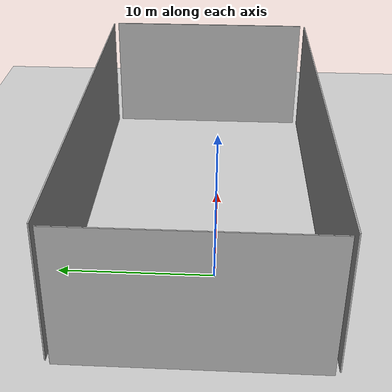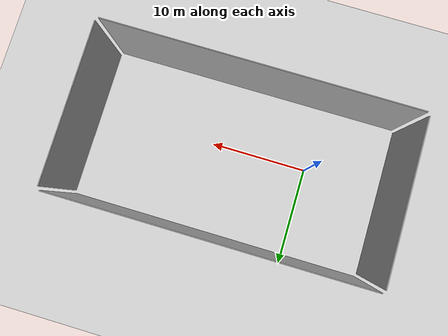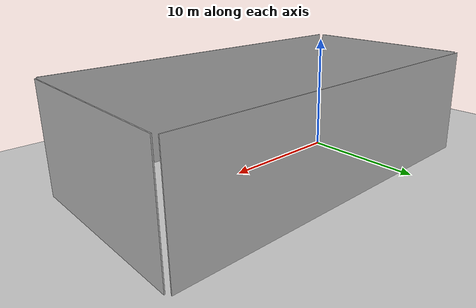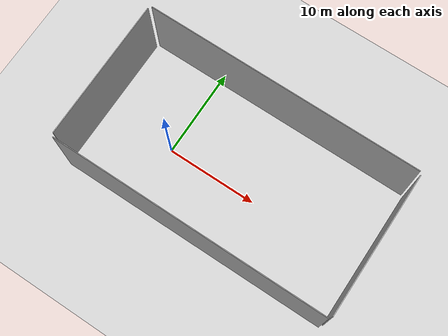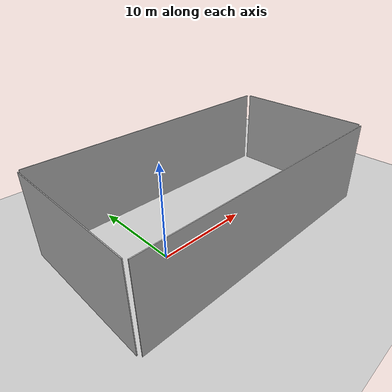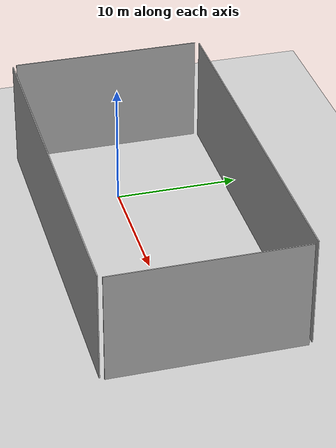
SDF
<sdf version="1.6">
 <world name="depot">
  <physics type="ode">
   <max_step_size>0.01</max_step_size>
   <real_time_factor>1.0</real_time_factor>
   <ode>
    <solver><type>quick</type><iters>2</iters><sor>1.4</sor></solver>
    <constraints>
     <cfm>0</cfm>
     <erp>1</erp>
     <contact_max_correcting_vel>0</contact_max_correcting_vel>
     <contact_surface_layer>0</contact_surface_layer>
    </constraints>
   </ode>
  </physics>
  <plugin filename="gz-sim-physics-system" name="ignition::gazebo::systems::Physics"/>
  <plugin filename="gz-sim-scene-broadcaster-system" name="ignition::gazebo::systems::SceneBroadcaster"/>
  <plugin filename="gz-sim-user-commands-system" name="ignition::gazebo::systems::UserCommands"/>
  <plugin filename="gz-sim-sensors-system" name="ignition::gazebo::systems::Sensors">
   <render_engine>ogre2</render_engine>
  </plugin>
  <plugin filename="gz-sim-air-pressure-system" name="gz::sim::systems::AirPressure"/>
  <plugin filename="gz-sim-imu-system" name="gz::sim::systems::Imu"/>
  <plugin filename="gz-sim-magnetometer-system" name="gz::sim::systems::Magnetometer"/>
  <plugin filename="gz-sim-navsat-system" name="gz::sim::systems::NavSat"/>
  <spherical_coordinates>
   <surface_model>EARTH_WGS84</surface_model>
   <world_frame_orientation>ENU</world_frame_orientation>
   <latitude_deg>-22.986687</latitude_deg>
   <longitude_deg>-43.202501</longitude_deg>
   <elevation>0</elevation>
   <heading_deg>0</heading_deg>
  </spherical_coordinates>
  <model name="ground_plane">
   <static>true</static>
   <link name="link">
    <collision name="ground_collision"><geometry><plane><normal>0 0 1</normal></plane></geometry></collision>
    <visual name="ground_visual">
     <geometry><plane><normal>0 0 1</normal><size>100 100</size></plane></geometry>
     <material>
      <ambient>0.8 0.8 0.8 1</ambient>
      <diffuse>0.8 0.8 0.8 1</diffuse>
      <specular>0.8 0.8 0.8 1</specular>
     </material>
    </visual>
   </link>
  </model>
  <model name="depot_collision">
   <static>true</static>
   <pose>7.19009 1.09982 0 0 0 0</pose>
   <link name="collision_link">
    <collision name="wall1">
     <pose>0 -7.6129 4.5 0 0 0</pose>
     <geometry><box><size>30.167 0.08 9</size></box></geometry>
    </collision>
    <collision name="wall2">
     <pose>0 7.2875 4.5 0 0 0</pose>
     <geometry><box><size>30.167 0.08 9</size></box></geometry>
    </collision>
    <collision name="wall3">
     <pose>-15 0 4.5 0 0 0</pose>
     <geometry><box><size>0.08 15.360 9</size></box></geometry>
    </collision>
    <collision name="wall4">
     <pose>15 0 4.5 0 0 0</pose>
     <geometry><box><size>0.08 15.360 9</size></box></geometry>
    </collision>
    <collision name="boxes1">
     <pose>0.22268 -4.7268 0.68506 0 0 0</pose>
     <geometry><box><size>1.288 1.422 1.288</size></box></geometry>
    </collision>
    <collision name="boxes2">
     <pose>3.1727 -4.7268 0.68506 0 0 0</pose>
     <geometry><box><size>1.288 1.422 1.288</size></box></geometry>
    </collision>
    <collision name="boxes3">
     <pose>5.95268 -4.7268 0.68506 0 0 0</pose>
     <geometry><box><size>1.288 1.422 1.288</size></box></geometry>
    </collision>
    <collision name="boxes4">
     <pose>8.55887 -4.7268 0.68506 0 0 0</pose>
     <geometry><box><size>1.288 1.422 1.288</size></box></geometry>
    </collision>
    <collision name="boxes5">
     <pose>11.326 -4.7268 0.68506 0 0 0</pose>
     <geometry><box><size>1.288 1.422 1.288</size></box></geometry>
    </collision>
    <collision name="boxes6">
     <pose>0.22268 -2.37448 0.68506 0 0 0</pose>
     <geometry><box><size>1.288 1.422 1.288</size></box></geometry>
    </collision>
    <collision name="boxes7">
     <pose>3.1727 -2.37448 0.68506 0 0 0</pose>
     <geometry><box><size>1.288 1.422 1.288</size></box></geometry>
    </collision>
    <collision name="boxes8">
     <pose>5.95268 -2.37448 0.68506 0 0 0</pose>
     <geometry><box><size>1.288 1.422 1.288</size></box></geometry>
    </collision>
    <collision name="boxes9">
     <pose>8.55887 -2.37448 0.68506 0 0 0</pose>
     <geometry><box><size>1.288 1.422 1.288</size></box></geometry>
    </collision>
    <collision name="boxes10">
     <pose>11.326 -2.37448 0.68506 0 0 0</pose>
     <geometry><box><size>1.288 1.422 1.288</size></box></geometry>
    </collision>
    <collision name="boxes11">
     <pose>-1.2268 4.1557 0.68506 0 0 -1.02799893</pose>
     <geometry><box><size>1.288 1.422 1.288</size></box></geometry>
    </collision>
    <collision name="pilar1">
     <pose>-7.5402 3.6151 1 0 0 0</pose>
     <geometry><box><size>0.465 0.465 2</size></box></geometry>
    </collision>
    <collision name="pilar2">
     <pose>7.4575 3.6151 1 0 0 0</pose>
     <geometry><box><size>0.465 0.465 2</size></box></geometry>
    </collision>
    <collision name="pilar3">
     <pose>-7.5402 -3.8857 1 0 0 0</pose>
     <geometry><box><size>0.465 0.465 2</size></box></geometry>
    </collision>
    <collision name="pilar4">
     <pose>7.4575 -3.8857 1 0 0 0</pose>
     <geometry><box><size>0.465 0.465 2</size></box></geometry>
    </collision>
    <collision name="pallet_mover1">
     <pose>-0.6144 -2.389 0.41838 0 0 0</pose>
     <geometry><box><size>0.363 0.440 0.719</size></box></geometry>
    </collision>
    <collision name="pallet_mover2">
     <pose>-1.6004 4.8225 0.41838 0 0 0</pose>
     <geometry><box><size>0.363 0.244 0.719</size></box></geometry>
    </collision>
    <collision name="stairs">
     <pose>13.018 3.1652 0.25 0 0 0</pose>
     <geometry><box><size>1.299 0.6 0.5</size></box></geometry>
    </collision>
    <collision name="shelfs1">
     <pose>1.4662 -0.017559 0.5 0 0 0</pose>
     <geometry><cylinder><radius>0.03</radius><length>1</length></cylinder></geometry>
    </collision>
    <collision name="shelfs2">
     <pose>2.6483 -0.017559 0.5 0 0 0</pose>
     <geometry><cylinder><radius>0.03</radius><length>1</length></cylinder></geometry>
    </collision>
    <collision name="shelfs3">
     <pose>5.3247 -0.017559 0.5 0 0 0</pose>
     <geometry><cylinder><radius>0.03</radius><length>1</length></cylinder></geometry>
    </collision>
    <collision name="shelfs4">
     <pose>6.5063 -0.017559 0.5 0 0 0</pose>
     <geometry><cylinder><radius>0.03</radius><length>1</length></cylinder></geometry>
    </collision>
    <collision name="shelfs5">
     <pose>9.0758 -0.017559 0.5 0 0 0</pose>
     <geometry><cylinder><radius>0.03</radius><length>1</length></cylinder></geometry>
    </collision>
    <collision name="shelfs6">
     <pose>10.258 -0.017559 0.5 0 0 0</pose>
     <geometry><cylinder><radius>0.03</radius><length>1</length></cylinder></geometry>
    </collision>
    <collision name="shelfs7">
     <pose>1.4662 2.5664 0.5 0 0 0</pose>
     <geometry><cylinder><radius>0.03</radius><length>1</length></cylinder></geometry>
    </collision>
    <collision name="shelfs8">
     <pose>2.6483 2.5664 0.5 0 0 0</pose>
     <geometry><cylinder><radius>0.03</radius><length>1</length></cylinder></geometry>
    </collision>
    <collision name="shelfs9">
     <pose>5.3247 2.5664 0.5 0 0 0</pose>
     <geometry><cylinder><radius>0.03</radius><length>1</length></cylinder></geometry>
    </collision>
    <collision name="shelfs10">
     <pose>6.5063 2.5664 0.5 0 0 0</pose>
     <geometry><cylinder><radius>0.03</radius><length>1</length></cylinder></geometry>
    </collision>
    <collision name="shelfs11">
     <pose>9.0758 2.5664 0.5 0 0 0</pose>
     <geometry><cylinder><radius>0.03</radius><length>1</length></cylinder></geometry>
    </collision>
    <collision name="shelfs12">
     <pose>10.258 2.5664 0.5 0 0 0</pose>
     <geometry><cylinder><radius>0.03</radius><length>1</length></cylinder></geometry>
    </collision>
    <collision name="shelfs13">
     <pose>1.4662 5.1497 0.5 0 0 0</pose>
     <geometry><cylinder><radius>0.03</radius><length>1</length></cylinder></geometry>
    </collision>
    <collision name="shelfs14">
     <pose>2.6483 5.1497 0.5 0 0 0</pose>
     <geometry><cylinder><radius>0.03</radius><length>1</length></cylinder></geometry>
    </collision>
    <collision name="shelfs15">
     <pose>5.3247 5.1497 0.5 0 0 0</pose>
     <geometry><cylinder><radius>0.03</radius><length>1</length></cylinder></geometry>
    </collision>
    <collision name="shelfs16">
     <pose>6.5063 5.1497 0.5 0 0 0</pose>
     <geometry><cylinder><radius>0.03</radius><length>1</length></cylinder></geometry>
    </collision>
    <collision name="shelfs17">
     <pose>9.0758 5.1497 0.5 0 0 0</pose>
     <geometry><cylinder><radius>0.03</radius><length>1</length></cylinder></geometry>
    </collision>
    <collision name="shelfs18">
     <pose>10.258 5.1497 0.5 0 0 0</pose>
     <geometry><cylinder><radius>0.03</radius><length>1</length></cylinder></geometry>
    </collision>
   </link>
  </model>
  <model name="window_blockers">
   <pose>7.19009 1.09982 0 0 0 0</pose>
   <link name="box_link">
    <inertial>
     <inertia><ixx>0.16666</ixx><ixy>0</ixy><ixz>0</ixz><iyy>0.16666</iyy><iyz>0</iyz><izz>0.16666</izz></inertia>
     <mass>1</mass>
    </inertial>
    <visual name="wall1">
     <pose>0 -8 4.5 0 0 0</pose>
     <geometry><box><size>30.167000000000002 0.080000000000000002 9</size></box></geometry>
     <material>
      <ambient>0.300000012 0.300000012 0.300000012 1</ambient>
      <diffuse>0.699999988 0.699999988 0.699999988 1</diffuse>
      <specular>1 1 1 1</specular>
     </material>
    </visual>
    <visual name="wall2">
     <pose>0 8 4.5 0 0 0</pose>
     <geometry><box><size>30.167000000000002 0.080000000000000002 9</size></box></geometry>
     <material>
      <ambient>0.300000012 0.300000012 0.300000012 1</ambient>
      <diffuse>0.699999988 0.699999988 0.699999988 1</diffuse>
      <specular>1 1 1 1</specular>
     </material>
    </visual>
    <visual name="wall3">
     <pose>-15.3 0 4.5 0 0 0</pose>
     <geometry><box><size>0.080000000000000002 15.359999999999999 9</size></box></geometry>
     <material>
      <ambient>0.300000012 0.300000012 0.300000012 1</ambient>
      <diffuse>0.699999988 0.699999988 0.699999988 1</diffuse>
      <specular>1 1 1 1</specular>
     </material>
    </visual>
    <visual name="wall4">
     <pose>15.3 0 4.5 0 0 0</pose>
     <geometry><box><size>0.080000000000000002 15.359999999999999 9</size></box></geometry>
     <material>
      <ambient>0.300000012 0.300000012 0.300000012 1</ambient>
      <diffuse>0.699999988 0.699999988 0.699999988 1</diffuse>
      <specular>1 1 1 1</specular>
     </material>
    </visual>
   </link>
   <static>true</static>
  </model>
 </world>
</sdf>
